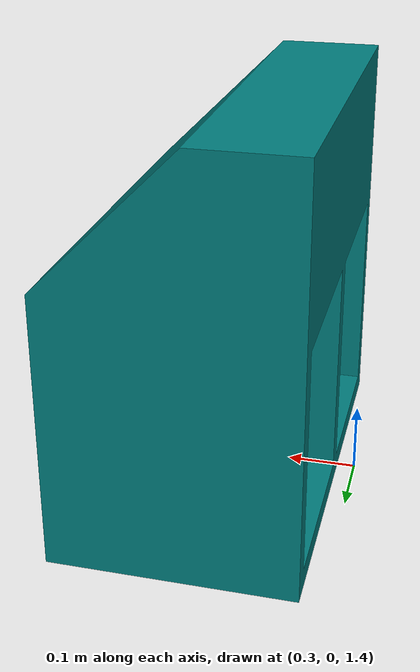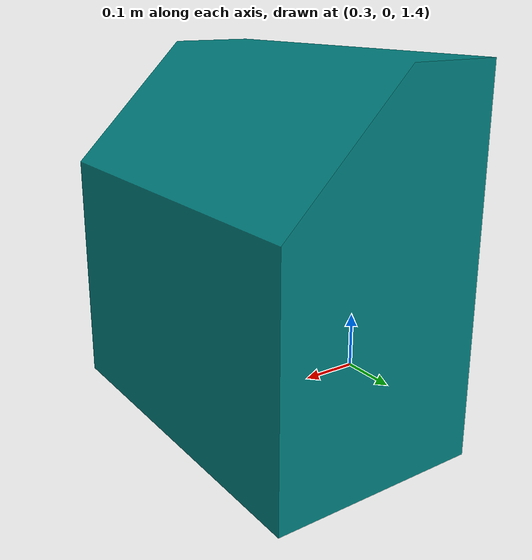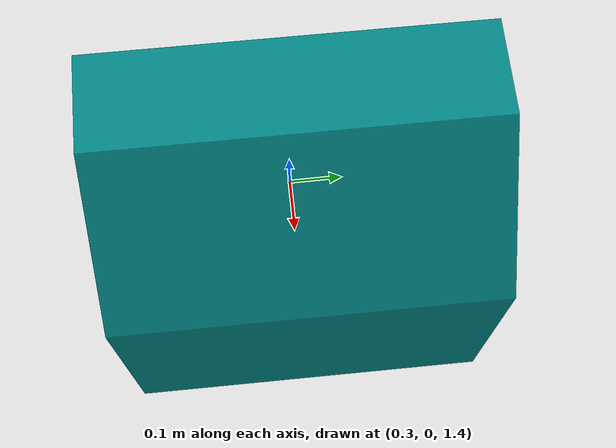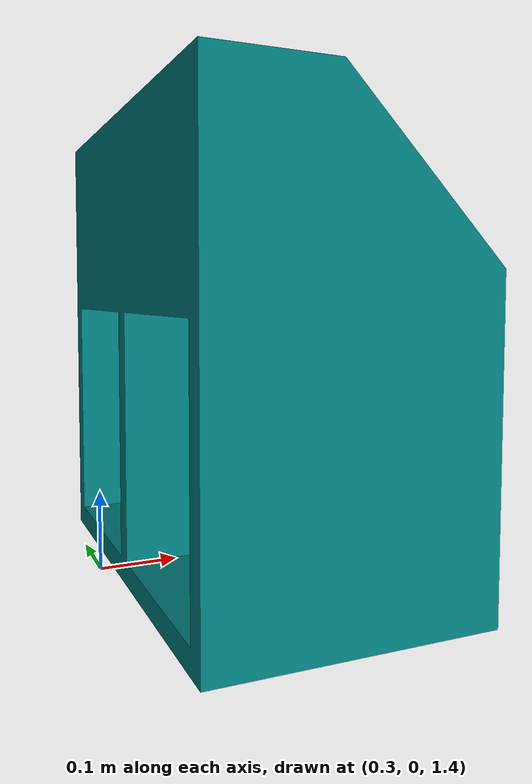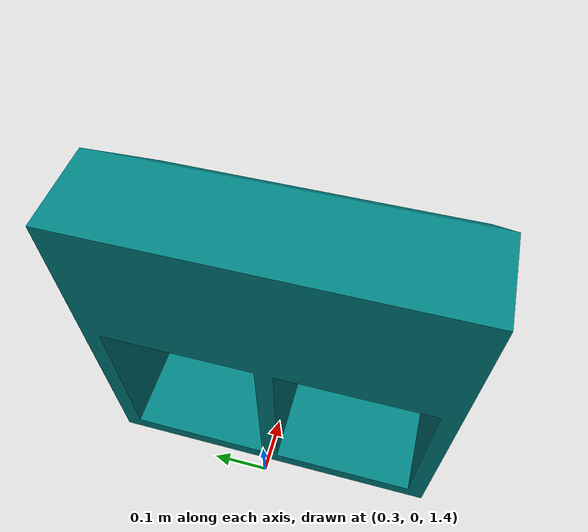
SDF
<?xml version="1.0" ?>
<sdf version="1.5">
 <model name="storage">
  <pose>0 0 0 0 0 0</pose>
  <static>true</static>
  <link name="link">
   <inertial>
    <origin xyz="0 0 0" rpy="0 0 0"/>
    <mass value="1"/>
   </inertial>
   <collision name="collision">
    <geometry>
      <mesh>
        <uri>model://storage/meshes/storage.stl</uri>
        <scale>0.001 0.001 0.001</scale>
      </mesh>
    </geometry>
   </collision>
   <visual name="visual">
    <material>
     <ambient>0 1 1 1</ambient>
     <diffuse>0 0.5 0.5 1</diffuse>
     <specular>0.1 0.1 0.1 0.1</specular>
     <emissive>0.2 0.2 0.2 1</emissive>
    </material>
    <geometry>
      <mesh>
        <uri>model://storage/meshes/storage.stl</uri>
        <scale>0.001 0.001 0.001</scale>
      </mesh>
    </geometry>
   </visual>
  </link>
 </model>
</sdf>
